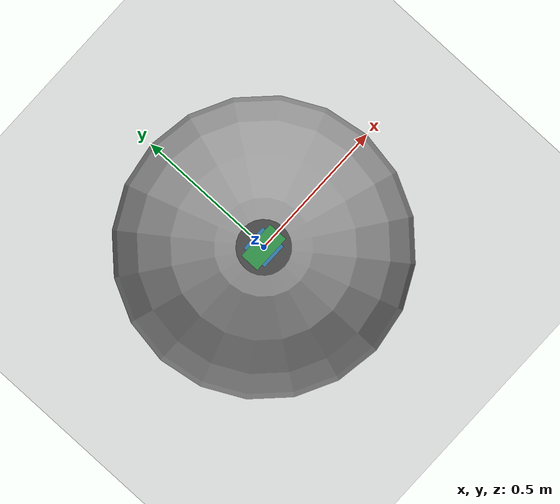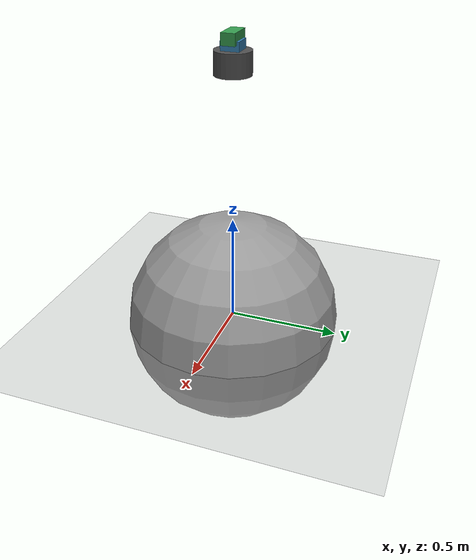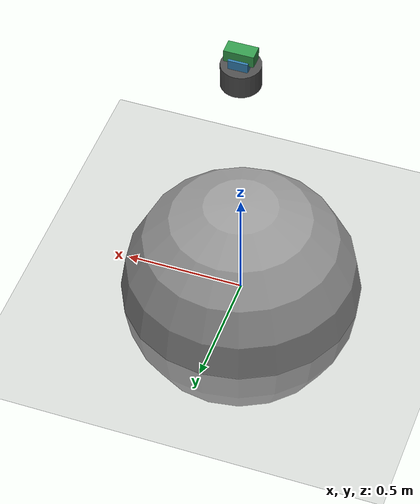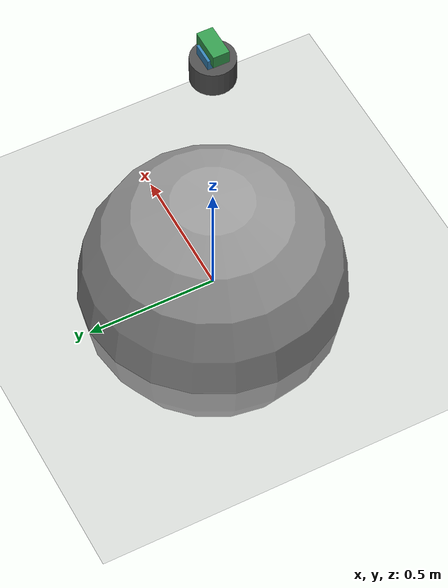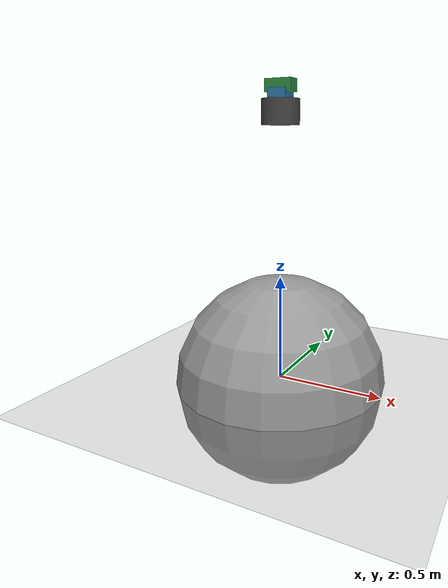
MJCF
<mujoco model="rws_gimbal_2dof">

  <option timestep="0.002" gravity="0 0 -9.81" integrator="implicit"/>

  <visual>
    <global offwidth="1280" offheight="720"/>
  </visual>

  <compiler angle="degree"/>

  <default>
    <joint damping="0.5" armature="0.01"/>
    <geom rgba="0.6 0.6 0.6 1"/>
  </default>

  <asset>
    <texture name="grid" type="2d" builtin="checker"
             rgb1="0.3 0.3 0.3" rgb2="0.4 0.4 0.4"
             width="512" height="512"/>
    <material name="grid_mat" texture="grid" texrepeat="8 8" reflectance="0.1"/>
    <material name="target_mat" rgba="0.9 0.2 0.1 1" reflectance="0.3"/>
  </asset>

  <worldbody>
    <!-- Ground plane -->
    <geom type="plane" size="20 20 0.1" material="grid_mat"/>

    <light pos="0 0 8" dir="0 0 -1" diffuse="0.8 0.8 0.8" castshadow="true"/>
    <light pos="5 5 6" dir="-1 -1 -1" diffuse="0.5 0.5 0.5"/>

    <!-- ============= Gimbal Assembly ============= -->
    <body name="base_link" pos="0 0 1.2">
      <geom type="cylinder" size="0.08 0.05" rgba="0.3 0.3 0.3 1"/>

      <!-- Yaw joint: rotates around Z (vertical) -->
      <body name="yaw_link" pos="0 0 0.06">
        <joint name="yaw_joint" type="hinge" axis="0 0 1"
               range="-160 160" damping="0.8" armature="0.02"/>
        <geom type="box" size="0.04 0.04 0.03" rgba="0.2 0.5 0.7 1"/>

        <!-- Pitch joint: rotates around Y (lateral) -->
        <body name="pitch_link" pos="0 0 0.04">
          <joint name="pitch_joint" type="hinge" axis="0 1 0"
                 range="-45 75" damping="0.6" armature="0.015"/>
          <geom type="box" size="0.06 0.03 0.025" rgba="0.2 0.6 0.3 1"/>

          <!-- Camera sensor: looks along +X of pitch_link -->
          <!-- fovy=41 matches pipeline CameraModel fy=965, height=720 -->
          <camera name="gimbal_cam" pos="0.07 0 0" xyaxes="0 -1 0 0 0 1"
                  fovy="41" resolution="1280 720"/>
        </body>
      </body>
    </body>

    <!-- ============= Target Object ============= -->
    <!-- Simple sphere; GroundTruthDetector reads 3D pos directly, no YOLO needed. -->
    <!-- gravcomp="1" cancels gravity so the target stays where we place it.       -->
    <body name="target" pos="0 0 0" gravcomp="1">
      <joint name="target_x" type="slide" axis="1 0 0" damping="0"/>
      <joint name="target_y" type="slide" axis="0 1 0" damping="0"/>
      <joint name="target_z" type="slide" axis="0 0 1" damping="0"/>
      <geom name="target_geom" type="sphere" size="0.5"
            material="target_mat" mass="1.0"/>
    </body>
  </worldbody>

  <!-- Velocity-controlled actuators (deg/s input mapped to joint rate) -->
  <actuator>
    <velocity name="yaw_motor" joint="yaw_joint" kv="50"
              ctrlrange="-240 240" forcerange="-20 20"/>
    <velocity name="pitch_motor" joint="pitch_joint" kv="50"
              ctrlrange="-240 240" forcerange="-20 20"/>
  </actuator>

  <!-- Sensors for reading joint state -->
  <sensor>
    <jointpos name="yaw_pos" joint="yaw_joint"/>
    <jointpos name="pitch_pos" joint="pitch_joint"/>
    <jointvel name="yaw_vel" joint="yaw_joint"/>
    <jointvel name="pitch_vel" joint="pitch_joint"/>
  </sensor>

</mujoco>
